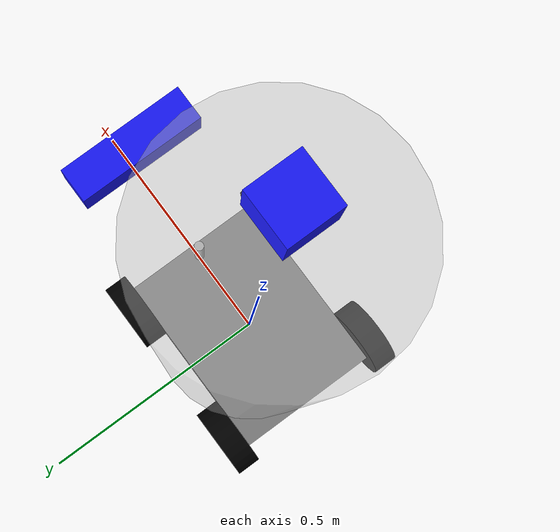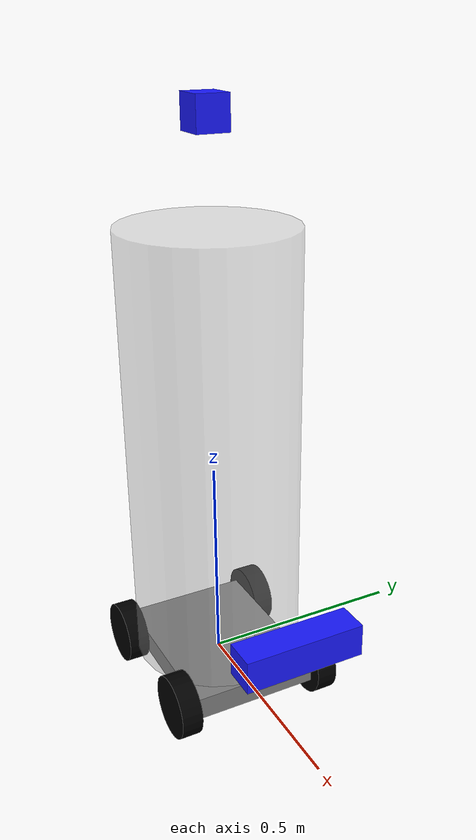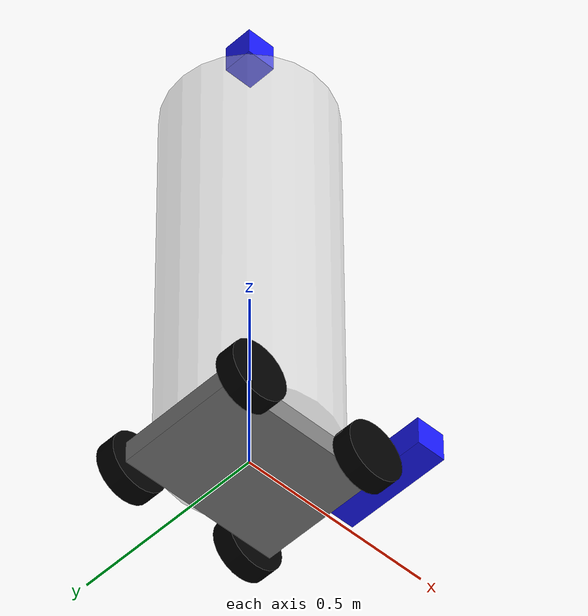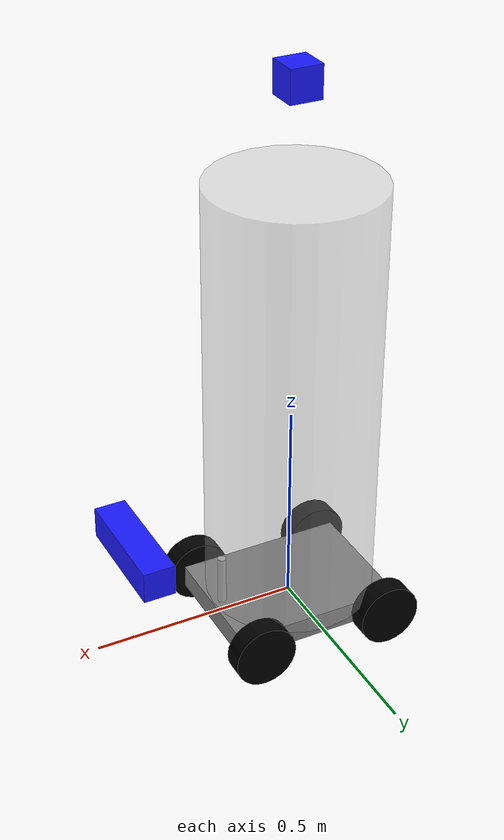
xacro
<?xml version="1.0"?>
<robot name="efim"
       xmlns:sensor="http://playerstage.sourceforge.net/gazebo/xmlschema/#sensor"
       xmlns:controller="http://playerstage.sourceforge.net/gazebo/xmlschema/#controller"
       xmlns:interface="http://playerstage.sourceforge.net/gazebo/xmlschema/#interface"
       xmlns:xacro="http://ros.org/wiki/xacro">

  <link name="base_link">
    <visual>
      <geometry>
        <box size="0.41148 0.30988 0.05588"/>
      </geometry>
      <material name="grey">
	<color rgba="0.5 0.5 0.5 1"/>
      </material>
    </visual>
    <collision>
      <geometry>
        <box size="0.41148 0.30988 0.05588"/>
      </geometry>
    </collision>
   <inertial>
      <mass value="20.0"/>
      <inertia ixx="1.0" iyy="1.0" izz="1.0"
               ixy="0" ixz="0" iyz="0"/>
    </inertial>
  </link>

  <gazebo reference="base_link">
    <material>Gazebo/Black</material>
  </gazebo>

  <link name="body_link">
    <visual>
      <geometry>
        <cylinder length="1.04775" radius="0.2032"/>
      </geometry>
      <material name="clear">
        <color rgba="0.75 0.75 0.75 0.4"/>
      </material>
    </visual>
    <inertial>
      <mass value="10.0"/>
      <inertia ixx="1.0" iyy="1.0" izz="1.0"
               ixy="0" ixz="0" iyz="0"/>
    </inertial>
  </link>

  <joint name="center_joint" type="fixed">
    <axis xyz="0 0 1"/>
    <parent link="base_link"/>
    <child link="body_link"/>
    <origin rpy="0 0 0" xyz="0 0 0.551815"/>
  </joint>

  <link name="camera_link">
    <visual>
      <geometry>
        <box size="0.0762 0.2794 0.0762"/>
      </geometry>
      <material name="blue">
	<color rgba="0.1 0.1 1 1"/>
      </material>
    </visual>
   <inertial>
      <mass value="0.25"/>
      <inertia ixx="1.0" iyy="1.0" izz="1.0"
               ixy="0" ixz="0" iyz="0"/>
    </inertial>
  </link>

  <joint name="camera_joint" type="fixed">
    <axis xyz="0 0 0"/>
    <parent link="body_link"/>
    <child link="camera_link"/>
    <origin rpy="0 0 0" xyz="0.4 0 -0.3"/>
  </joint>

  <link name="laser">
    <visual>
      <geometry>
        <box size="0.0762 0.0762 0.0762"/>
      </geometry>
      <material name="blue">
	<color rgba="0.1 0.1 1 1"/>
      </material>
    </visual>
   <inertial>
      <mass value="0.25"/>
      <inertia ixx="1.0" iyy="1.0" izz="1.0"
               ixy="0" ixz="0" iyz="0"/>
    </inertial>
  </link>

  <joint name="laser_joint" type="fixed">
    <axis xyz="0 0 1"/>
    <parent link="body_link"/>
    <child link="laser"/>
    <origin rpy="0 0 0" xyz="0.0 0 0.75"/>
  </joint>

  <link name="hitch_front_link">
    <visual>
      <geometry>
        <cylinder length="0.1524" radius="0.01"/>
      </geometry>
      <material name="silver">
	<color rgba="0.75 0.75 0.75 1"/>
      </material>
    </visual>
    <collision>
      <geometry>
        <cylinder length="0.1524" radius="0.01"/>
      </geometry>
    </collision>
    <inertial>
      <mass value="0.1"/>
      <inertia ixx="1.0" iyy="1.0" izz="1.0"
               ixy="0" ixz="0" iyz="0"/>
    </inertial>
  </link>

  <joint name="hitch_joint" type="fixed">
    <axis xyz="0 0 1"/>
    <parent link="base_link"/>
    <child link="hitch_front_link"/>
    <origin rpy="0 0 0" xyz="0.18 0 0.0762"/>
  </joint>

  <link name="wheel_front_left">
    <visual>
      <geometry>
        <cylinder length="0.0508" radius="0.0762"/>
      </geometry>
      <material name="black">
        <color rgba="0 0 0 1"/>
      </material>
    </visual>
    <collision>
      <geometry>
        <cylinder length="0.0508" radius="0.0762"/>
      </geometry>
    </collision>
    <inertial>
      <mass value="0.1"/>
      <inertia ixx="1.0" iyy="1.0" izz="1.0"
               ixy="0" ixz="0" iyz="0"/>
    </inertial>
  </link>

  <joint name="axis_front_left" type="continuous">
    <axis xyz="0 0 1"/>
    <parent link="base_link"/>
    <child link="wheel_front_left"/>
    <origin rpy="-1.5708 0 0" xyz="0.165862 0.18034 0"/>
  </joint>

 <link name="wheel_front_right">
    <visual>
      <geometry>
        <cylinder length="0.0508" radius="0.0762"/>
      </geometry>
      <material name="black"/>
    </visual>
    <collision>
      <geometry>
        <cylinder length="0.0508" radius="0.0762"/>
      </geometry>
    </collision>
    <inertial>
      <mass value="0.1"/>
      <inertia ixx="1.0" iyy="1.0" izz="1.0"
               ixy="0" ixz="0" iyz="0"/>
    </inertial>
  </link>

  <joint name="axis_front_right" type="continuous">
    <axis xyz="0 0 1"/>
    <parent link="base_link"/>
    <child link="wheel_front_right"/>
    <origin rpy="-1.5708 0 0" xyz="0.165862 -0.18034 0"/>
  </joint>

  <link name="wheel_rear_right">
    <visual>
      <geometry>
        <cylinder length="0.0508" radius="0.0762"/>
      </geometry>
      <material name="black"/>
    </visual>
    <collision>
      <geometry>
        <cylinder length="0.0508" radius="0.0762"/>
      </geometry>
    </collision>
    <inertial>
      <mass value="0.1"/>
      <inertia ixx="1.0" iyy="1.0" izz="1.0"
               ixy="0" ixz="0" iyz="0"/>
    </inertial>
  </link>

  <joint name="axis_rear_right" type="continuous">
    <axis xyz="0 0 1"/>
    <parent link="base_link"/>
    <child link="wheel_rear_right"/>
    <origin rpy="-1.5708 0 0" xyz="-0.165862 -0.18034 0"/>
  </joint>

  <link name="wheel_rear_left">
    <visual>
      <geometry>
        <cylinder length="0.0508" radius="0.0762"/>
      </geometry>
      <material name="black"/>
    </visual>
    <collision>
      <geometry>
        <cylinder length="0.0508" radius="0.0762"/>
      </geometry>
    </collision>
    <inertial>
      <mass value="0.1"/>
      <inertia ixx="1.0" iyy="1.0" izz="1.0"
               ixy="0" ixz="0" iyz="0"/>
    </inertial>
    <gazebo reference="wheel_rear_left">
      <material>Gazebo/Black</material>
    </gazebo>
  </link>

  <joint name="axis_rear_left" type="continuous">
    <axis xyz="0 0 1"/>
    <parent link="base_link"/>
    <child link="wheel_rear_left"/>
    <origin rpy="-1.5708 0 0" xyz="-0.165862 0.18034 0"/>
  </joint>

<gazebo>
  <plugin name="skid_steer_drive_controller" filename="libgazebo_ros_skid_steer_drive.so">
    <updateRate>100.0</updateRate>
    <robotNamespace></robotNamespace>
    <leftFrontJoint>axis_front_left</leftFrontJoint>
    <rightFrontJoint>axis_front_right</rightFrontJoint>
    <leftRearJoint>axis_rear_left</leftRearJoint>
    <rightRearJoint>axis_rear_right</rightRearJoint>
    <wheelSeparation>0.254</wheelSeparation>
    <wheelDiameter>0.1524</wheelDiameter>
    <robotBaseFrame>base_link</robotBaseFrame>
    <torque>10</torque>
    <commandTopic>pocketbot/cmd_vel</commandTopic>
    <broadcastTF>0</broadcastTF>
    <odometryFrame>/odom_frame_gazebo</odometryFrame>
    <odometryTopic>/odom_gazebo</odometryTopic>
  </plugin>
  <plugin name="joint_state_publisher" filename="libgazebo_ros_joint_state_publisher.so">
    <jointName>axis_front_left, axis_front_right, axis_rear_left, axis_rear_right</jointName>
    <updateRate>100</updateRate>
  </plugin>
</gazebo>

<gazebo reference="laser">
    <material>Gazebo/Blue</material>
    <sensor type="ray" name="head_hokuyo_sensor">
      <pose>0 0 0 0 0 0</pose>
      <visualize>true</visualize>
      <update_rate>40</update_rate>
      <ray>
        <scan>
          <horizontal>
            <samples>720</samples>
            <resolution>1</resolution>
            <min_angle>-1.570795</min_angle>
            <max_angle>1.570795</max_angle>
          </horizontal>
        </scan>
        <range>
          <min>0.10</min>
          <max>30.0</max>
          <resolution>0.01</resolution>
        </range>
        <noise>
          <type>gaussian</type>
          <mean>0.0</mean>
          <stddev>0.01</stddev>
        </noise>
      </ray>
      <plugin name="gazebo_ros_head_hokuyo_controller" filename="libgazebo_ros_laser.so">
        <topicName>/scan</topicName>
        <frameName>laser</frameName>
      </plugin>
    </sensor>
  </gazebo>

  <gazebo reference="camera_link">
    <material>Gazebo/Blue</material>
    <sensor type="depth" name="camera_link">
        <always_on>1</always_on>
        <visualize>true</visualize>
        <camera>
            <horizontal_fov>1.047</horizontal_fov>
            <image>
                <width>640</width>
                <height>480</height>
                <format>R8G8B8</format>
            </image>
            <depth_camera>

            </depth_camera>
            <clip>
                <near>0.05</near>
                <far>8.0</far>
            </clip>
        </camera>
        <plugin name="camera_controller" filename="libgazebo_ros_openni_kinect.so">
            <cameraName>camera</cameraName>
            <alwaysOn>true</alwaysOn>
            <updateRate>10.0</updateRate>
            <frameName>camera_link</frameName>
            <imageTopicName>rgb/image_rect_color</imageTopicName>
            <depthImageTopicName>depth_registered/image_raw</depthImageTopicName>
            <pointCloudTopicName>depth/points</pointCloudTopicName>
            <cameraInfoTopicName>rgb/camera_info</cameraInfoTopicName>
            <depthImageCameraInfoTopicName>depth/camera_info</depthImageCameraInfoTopicName>
            <pointCloudCutoff>0.4</pointCloudCutoff>
            <hackBaseline>0.07</hackBaseline>
            <distortionK1>0.0</distortionK1>
            <distortionK2>0.0</distortionK2>
            <distortionK3>0.0</distortionK3>
            <distortionT1>0.0</distortionT1>
            <distortionT2>0.0</distortionT2>
            <CxPrime>0.0</CxPrime>
            <Cx>0.0</Cx>
            <Cy>0.0</Cy>
            <focalLength>0.0</focalLength>
        </plugin>
    </sensor>
</gazebo>

</robot>
